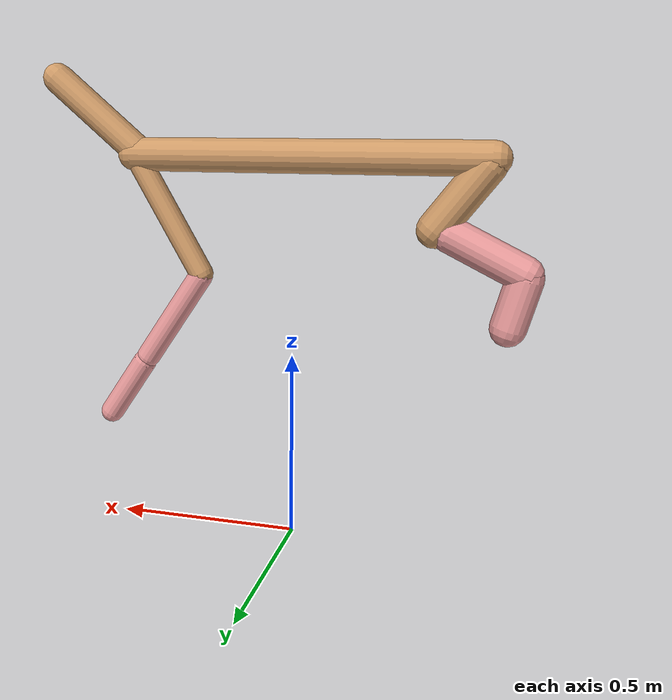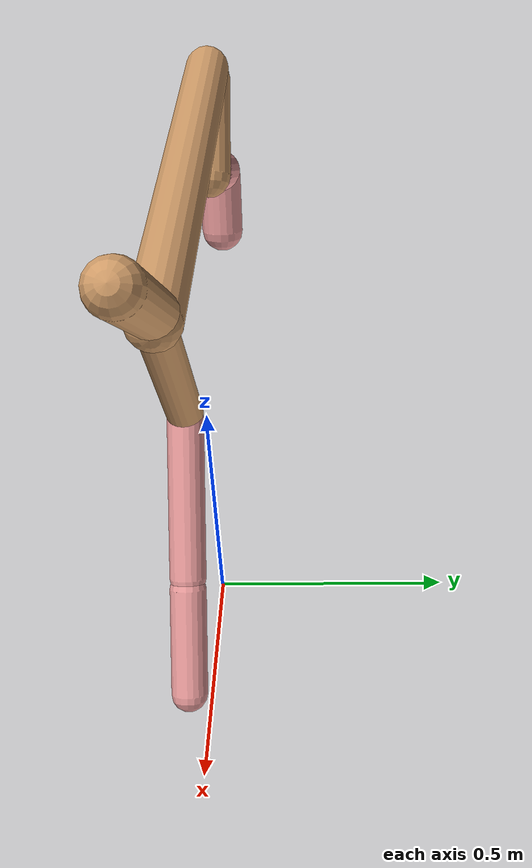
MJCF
<mujoco model="cheetah">
  <compiler angle="radian" coordinate="local" inertiafromgeom="true" settotalmass="14" />
  <default>
    <joint armature=".1" damping=".01" limited="true" solimplimit="0 .8 .03" solreflimit=".02 1" stiffness="8" />
    <geom conaffinity="0" condim="3" contype="1" friction="0.8 .1 .1" rgba="0.8 0.6 .4 1" solimp="0.0 0.8 0.01" solref="0.02 1" />
    <motor ctrllimited="true" ctrlrange="-1 1" />
  </default>
  <size nstack="300000" nuser_geom="1" />
  <option gravity="0 0 -9.81" timestep="0.01" />
  <worldbody>
    <body name="torso" pos="0.0 0.0 1.0250064899700195">
      <joint armature="0" axis="1 0 0" damping="0" limited="false" name="ignorex" pos="0 0 0" stiffness="0" type="slide" />
      <joint armature="0" axis="0 0 1" damping="0" limited="false" name="ignorez" pos="0 0 0" stiffness="0" type="slide" />
      <joint armature="0" axis="0 1 0" damping="0" limited="false" name="ignorey" pos="0 0 0" stiffness="0" type="hinge" />
      <geom fromto="-0.5 0.0 0.0 0.4336468854391374 0.0 0.0" name="torso" size="0.04412136958963839" type="capsule" />
      <geom axisangle="0 1 0 .87" name="head" pos="0.5336468854391373 0.0 0.1" size="0.040198622899662445 0.15" type="capsule" />

      <body name="bthigh" pos="-.5 0 0">
        <joint axis="0 1 0" damping="6" name="bthigh" pos="0 0 0" range="-.52 1.05" stiffness="240" type="hinge" />
        <geom axisangle="0 1 0 -3.8" name="bthigh" pos="0.0734775819030384 0.0 -0.0955208564739499" size="0.046511806831932075 0.10149999999999999" type="capsule" />
        <body name="bshin" pos="0.10695516380607678 0.0 -0.18104171294789978">
          <joint axis="0 1 0" damping="4.5" name="bshin" pos="0 0 0" range="-.785 .785" stiffness="180" type="hinge" />
          <geom axisangle="0 1 0 -2.03" name="bshin" pos="-0.0997507764050038 0.0 -0.0498753882025019" rgba="0.9 0.6 0.6 1" size="0.046511806831932075 0.105" type="capsule" />
          <body name="bfoot" pos="-0.1995015528100076 0.0 -0.0997507764050038">
            <joint axis="0 1 0" damping="3" name="bfoot" pos="0 0 0" range="-.4 .785" stiffness="120" type="hinge" />
            <geom axisangle="0 1 0 -.27" name="bfoot" pos="0.021667753813597694 0.0 -0.07005907066396588" rgba="0.9 0.6 0.6 1" size="0.046511806831932075 0.0658" type="capsule" />
            <inertial mass="10" />
          </body>
        </body>
      </body>
      <body name="fthigh" pos="0.4336468854391373 0.0 0.0">
        <joint axis="0 1 0" damping="4.5" name="fthigh" pos="0 0 0" range="-1.5 0.8" stiffness="180" type="hinge" />
        <geom axisangle="0 1 0 .52" name="fthigh" pos="-0.09278269874751319 0.0 -0.15905605499573688" size="0.0322 0.17821533803976217" type="capsule" />
        <body name="fshin" pos="-0.18556539749502637 0.0 -0.31811210999147377">
          <joint axis="0 1 0" damping="3" name="fshin" pos="0 0 0" range="-1.2 1.1" stiffness="120" type="hinge" />
          <geom axisangle="0 1 0 -.6" name="fshin" pos="0.08609890414272922 0.0 -0.11921386727454814" rgba="0.9 0.6 0.6 1" size="0.0322 0.14203628445274277" type="capsule" />
          <body name="ffoot" pos="0.17219780828545844 0.0 -0.23842773454909627">
            <joint axis="0 1 0" damping="1.5" name="ffoot" pos="0 0 0" range="-3.1 -0.3" stiffness="60" type="hinge" />
            <geom axisangle="0 1 0 -.6" name="ffoot" pos="0.05786870383621442 0.0 -0.09001798374522244" rgba="0.9 0.6 0.6 1" size="0.0322 0.09379754633671694" type="capsule" />
            <inertial mass="10" />
          </body>
        </body>
      </body>
    </body>
  </worldbody>
  <actuator>
    <motor gear="120" joint="bthigh" name="bthigh" />
    <motor gear="90" joint="bshin" name="bshin" />
    <motor gear="60" joint="bfoot" name="bfoot" />
    <motor gear="120" joint="fthigh" name="fthigh" />
    <motor gear="60" joint="fshin" name="fshin" />
    <motor gear="30" joint="ffoot" name="ffoot" />
  </actuator>
</mujoco>
